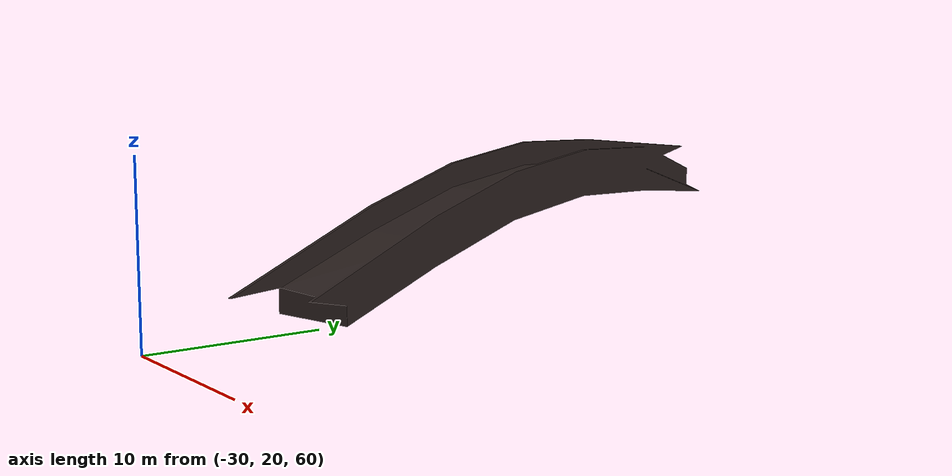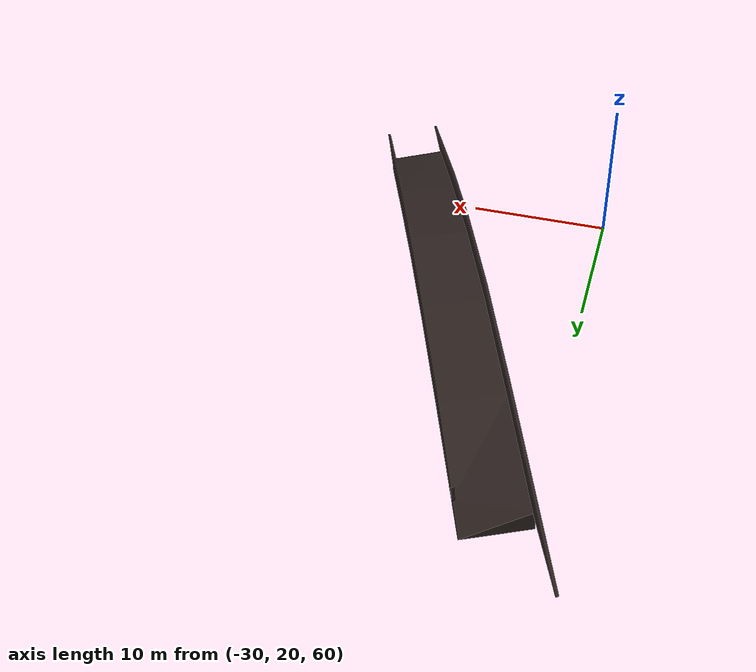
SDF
<?xml version="1.0" ?>
<sdf version="1.5">
  <model name="Bridge">
    <pose>0 0 66  0 0 0</pose>
    <static>true</static>
    <link name="link">
      <inertial>
        <mass>40.0</mass>
        <inertia>
          <ixx>1</ixx>
          <ixy>0</ixy>
          <ixz>0</ixz>
          <iyy>1</iyy>
          <iyz>0</iyz>
          <izz>1</izz>
        </inertia>
      </inertial>

      <visual name="visual">
        <geometry>
          <mesh>
            <uri>model://bridge/meshes/bridge.dae</uri>
          </mesh>
	      </geometry>
      </visual>
      <collision name="collision">
        <geometry>
          <mesh>
            <uri>model://bridge/meshes/bridge.dae</uri>
          </mesh>
        </geometry>
      </collision>
    </link>
  </model>
</sdf>
